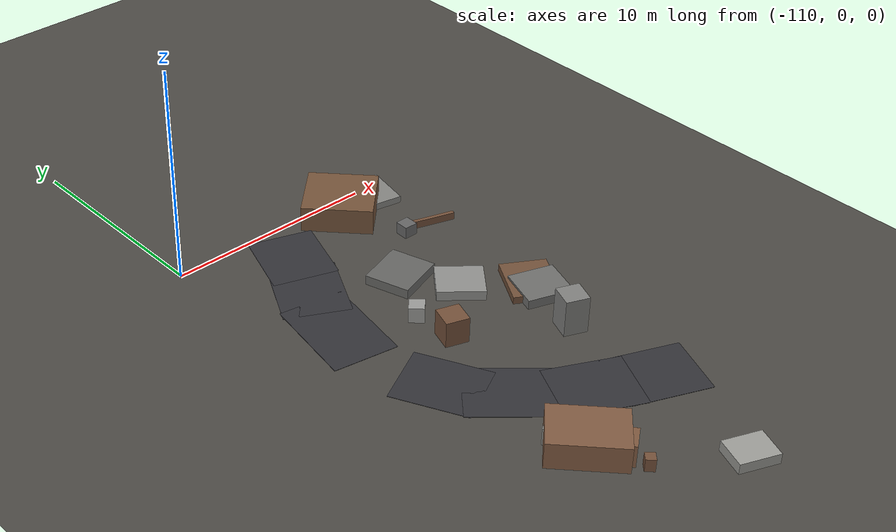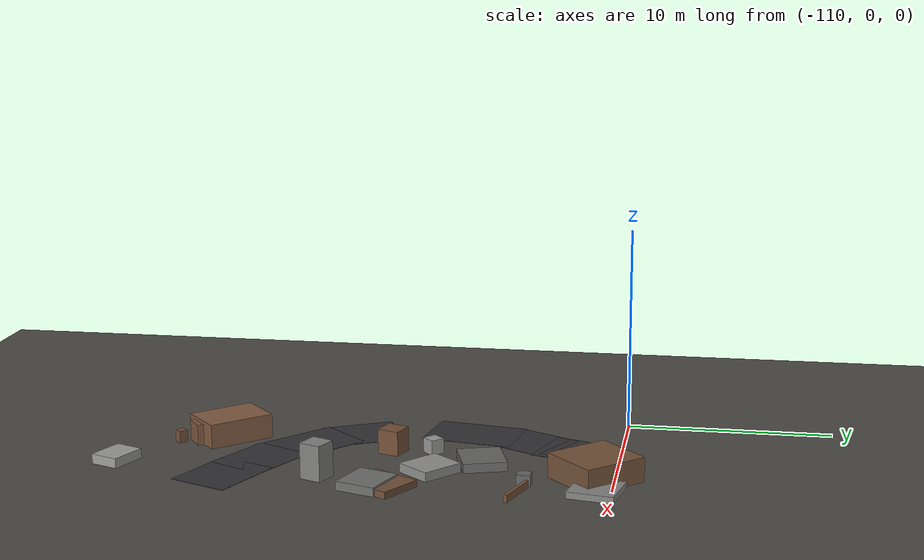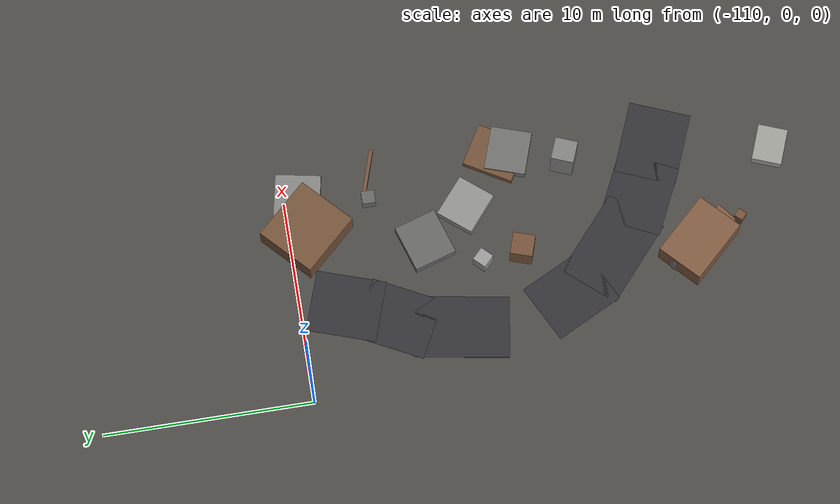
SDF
<sdf version="1.6">
 <world name="navitas_arena">
  <model name="ground_plane">
   <static>true</static>
   <link name="link">
    <collision name="collision">
     <geometry><plane><normal>0 0 1</normal><size>400 400</size></plane></geometry>
     <surface><friction><ode><mu>0.800</mu><mu2>0.800</mu2></ode></friction></surface>
    </collision>
    <visual name="visual">
     <cast_shadows>false</cast_shadows>
     <geometry><plane><normal>0 0 1</normal><size>400 400</size></plane></geometry>
     <material><ambient>0.300 0.290 0.270 1</ambient><diffuse>0.300 0.290 0.270 1</diffuse></material>
    </visual>
   </link>
  </model>
  <model name="road_kolay_1_4">
   <static>true</static>
   <pose>-99.745 -17.986 0.040 0 0 2.752</pose>
   <link name="link">
    <collision name="col"><geometry><box><size>3.623 3.000 0.020</size></box></geometry></collision>
    <visual name="vis">
     <geometry><box><size>3.623 3.000 0.020</size></box></geometry>
     <material><ambient>0.20 0.20 0.22 1</ambient><diffuse>0.20 0.20 0.22 1</diffuse></material>
    </visual>
   </link>
  </model>
  <model name="road_kolay_1_5">
   <static>true</static>
   <pose>-102.178 -16.896 0.040 0 0 2.688</pose>
   <link name="link">
    <collision name="col"><geometry><box><size>3.512 3.000 0.020</size></box></geometry></collision>
    <visual name="vis">
     <geometry><box><size>3.512 3.000 0.020</size></box></geometry>
     <material><ambient>0.20 0.20 0.22 1</ambient><diffuse>0.20 0.20 0.22 1</diffuse></material>
    </visual>
   </link>
  </model>
  <model name="road_kolay_1_6">
   <static>true</static>
   <pose>-104.698 -15.151 0.040 0 0 2.425</pose>
   <link name="link">
    <collision name="col"><geometry><box><size>4.472 3.000 0.020</size></box></geometry></collision>
    <visual name="vis">
     <geometry><box><size>4.472 3.000 0.020</size></box></geometry>
     <material><ambient>0.20 0.20 0.22 1</ambient><diffuse>0.20 0.20 0.22 1</diffuse></material>
    </visual>
   </link>
  </model>
  <model name="road_kolay_1_7">
   <static>true</static>
   <pose>-106.624 -12.817 0.040 0 0 2.034</pose>
   <link name="link">
    <collision name="col"><geometry><box><size>3.495 3.000 0.020</size></box></geometry></collision>
    <visual name="vis">
     <geometry><box><size>3.495 3.000 0.020</size></box></geometry>
     <material><ambient>0.20 0.20 0.22 1</ambient><diffuse>0.20 0.20 0.22 1</diffuse></material>
    </visual>
   </link>
  </model>
  <model name="road_kolay_1_9">
   <static>true</static>
   <pose>-107.424 -7.431 0.040 0 0 1.408</pose>
   <link name="link">
    <collision name="col"><geometry><box><size>4.476 3.000 0.020</size></box></geometry></collision>
    <visual name="vis">
     <geometry><box><size>4.476 3.000 0.020</size></box></geometry>
     <material><ambient>0.20 0.20 0.22 1</ambient><diffuse>0.20 0.20 0.22 1</diffuse></material>
    </visual>
   </link>
  </model>
  <model name="road_kolay_1_10">
   <static>true</static>
   <pose>-106.527 -4.500 0.040 0 0 1.091</pose>
   <link name="link">
    <collision name="col"><geometry><box><size>3.530 3.000 0.020</size></box></geometry></collision>
    <visual name="vis">
     <geometry><box><size>3.530 3.000 0.020</size></box></geometry>
     <material><ambient>0.20 0.20 0.22 1</ambient><diffuse>0.20 0.20 0.22 1</diffuse></material>
    </visual>
   </link>
  </model>
  <model name="road_kolay_1_11">
   <static>true</static>
   <pose>-105.526 -2.167 0.040 0 0 1.244</pose>
   <link name="link">
    <collision name="col"><geometry><box><size>3.363 3.000 0.020</size></box></geometry></collision>
    <visual name="vis">
     <geometry><box><size>3.363 3.000 0.020</size></box></geometry>
     <material><ambient>0.20 0.20 0.22 1</ambient><diffuse>0.20 0.20 0.22 1</diffuse></material>
    </visual>
   </link>
  </model>
  <model name="deb_kolay_4">
   <static>true</static>
   <pose>-99.810 -0.667 0.159 0 0 1.384</pose>
   <link name="link">
    <collision name="col"><geometry><box><size>2.197 2.189 0.318</size></box></geometry></collision>
    <visual name="vis">
     <geometry><box><size>2.197 2.189 0.318</size></box></geometry>
     <material><ambient>0.52 0.52 0.51 1</ambient><diffuse>0.52 0.52 0.51 1</diffuse></material>
    </visual>
   </link>
  </model>
  <model name="deb_kolay_10">
   <static>true</static>
   <pose>-99.119 -10.384 0.168 0 0 1.038</pose>
   <link name="link">
    <collision name="col"><geometry><box><size>2.487 2.132 0.336</size></box></geometry></collision>
    <visual name="vis">
     <geometry><box><size>2.487 2.132 0.336</size></box></geometry>
     <material><ambient>0.45 0.32 0.23 1</ambient><diffuse>0.45 0.32 0.23 1</diffuse></material>
    </visual>
   </link>
  </model>
  <model name="deb_kolay_20">
   <static>true</static>
   <pose>-100.008 -13.566 0.861 0 0 1.186</pose>
   <link name="link">
    <collision name="col"><geometry><box><size>1.084 1.084 1.721</size></box></geometry></collision>
    <visual name="vis">
     <geometry><box><size>1.084 1.084 1.721</size></box></geometry>
     <material><ambient>0.51 0.51 0.50 1</ambient><diffuse>0.51 0.51 0.50 1</diffuse></material>
    </visual>
   </link>
  </model>
  <model name="deb_kolay_22">
   <static>true</static>
   <pose>-101.520 -8.554 0.226 0 0 0.877</pose>
   <link name="link">
    <collision name="col"><geometry><box><size>1.874 2.137 0.452</size></box></geometry></collision>
    <visual name="vis">
     <geometry><box><size>1.874 2.137 0.452</size></box></geometry>
     <material><ambient>0.57 0.57 0.56 1</ambient><diffuse>0.57 0.57 0.56 1</diffuse></material>
    </visual>
   </link>
  </model>
  <model name="deb_kolay_26">
   <static>true</static>
   <pose>-100.451 -4.015 0.281 0 0 3.123</pose>
   <link name="link">
    <collision name="col"><geometry><box><size>0.638 0.638 0.561</size></box></geometry></collision>
    <visual name="vis">
     <geometry><box><size>0.638 0.638 0.561</size></box></geometry>
     <material><ambient>0.40 0.40 0.40 1</ambient><diffuse>0.40 0.40 0.40 1</diffuse></material>
    </visual>
   </link>
  </model>
  <model name="deb_kolay_42">
   <static>true</static>
   <pose>-101.394 -0.664 0.281 0 0 1.383</pose>
   <link name="link">
    <collision name="col"><geometry><box><size>0.439 0.439 0.562</size></box></geometry></collision>
    <visual name="vis">
     <geometry><box><size>0.439 0.439 0.562</size></box></geometry>
     <material><ambient>0.57 0.57 0.56 1</ambient><diffuse>0.57 0.57 0.56 1</diffuse></material>
    </visual>
   </link>
  </model>
  <model name="deb_kolay_56">
   <static>true</static>
   <pose>-102.980 -6.371 0.224 0 0 0.306</pose>
   <link name="link">
    <collision name="col"><geometry><box><size>2.315 2.089 0.447</size></box></geometry></collision>
    <visual name="vis">
     <geometry><box><size>2.315 2.089 0.447</size></box></geometry>
     <material><ambient>0.40 0.40 0.39 1</ambient><diffuse>0.40 0.40 0.39 1</diffuse></material>
    </visual>
   </link>
  </model>
  <model name="deb_kolay_76">
   <static>true</static>
   <pose>-99.124 -11.015 0.216 0 0 1.244</pose>
   <link name="link">
    <collision name="col"><geometry><box><size>1.978 2.156 0.432</size></box></geometry></collision>
    <visual name="vis">
     <geometry><box><size>1.978 2.156 0.432</size></box></geometry>
     <material><ambient>0.44 0.44 0.43 1</ambient><diffuse>0.44 0.44 0.43 1</diffuse></material>
    </visual>
   </link>
  </model>
  <model name="deb_kolay_104">
   <static>true</static>
   <pose>-104.158 -21.413 0.297 0 0 0.827</pose>
   <link name="link">
    <collision name="col"><geometry><box><size>0.429 0.429 0.593</size></box></geometry></collision>
    <visual name="vis">
     <geometry><box><size>0.429 0.429 0.593</size></box></geometry>
     <material><ambient>0.46 0.32 0.23 1</ambient><diffuse>0.46 0.32 0.23 1</diffuse></material>
    </visual>
   </link>
  </model>
  <model name="deb_kolay_130">
   <static>true</static>
   <pose>-105.832 -17.953 0.395 0 0 0.569</pose>
   <link name="link">
    <collision name="col"><geometry><box><size>0.593 0.593 0.790</size></box></geometry></collision>
    <visual name="vis">
     <geometry><box><size>0.593 0.593 0.790</size></box></geometry>
     <material><ambient>0.55 0.55 0.53 1</ambient><diffuse>0.55 0.55 0.53 1</diffuse></material>
    </visual>
   </link>
  </model>
  <model name="deb_kolay_157">
   <static>true</static>
   <pose>-104.383 -8.928 0.365 0 0 2.371</pose>
   <link name="link">
    <collision name="col"><geometry><box><size>0.691 0.691 0.731</size></box></geometry></collision>
    <visual name="vis">
     <geometry><box><size>0.691 0.691 0.731</size></box></geometry>
     <material><ambient>0.61 0.61 0.60 1</ambient><diffuse>0.61 0.61 0.60 1</diffuse></material>
    </visual>
   </link>
  </model>
  <model name="deb_kolay_197">
   <static>true</static>
   <pose>-104.411 -20.319 0.512 0 0 2.212</pose>
   <link name="link">
    <collision name="col"><geometry><box><size>1.084 1.084 1.024</size></box></geometry></collision>
    <visual name="vis">
     <geometry><box><size>1.084 1.084 1.024</size></box></geometry>
     <material><ambient>0.50 0.35 0.25 1</ambient><diffuse>0.50 0.35 0.25 1</diffuse></material>
    </visual>
   </link>
  </model>
  <model name="deb_kolay_200">
   <static>true</static>
   <pose>-99.079 -4.186 0.176 0 0 2.835</pose>
   <link name="link">
    <collision name="col"><geometry><box><size>2.214 0.178 0.351</size></box></geometry></collision>
    <visual name="vis">
     <geometry><box><size>2.214 0.178 0.351</size></box></geometry>
     <material><ambient>0.46 0.32 0.23 1</ambient><diffuse>0.46 0.32 0.23 1</diffuse></material>
    </visual>
   </link>
  </model>
  <model name="deb_kolay_204">
   <static>true</static>
   <pose>-100.848 -23.497 0.238 0 0 2.768</pose>
   <link name="link">
    <collision name="col"><geometry><box><size>1.804 1.433 0.476</size></box></geometry></collision>
    <visual name="vis">
     <geometry><box><size>1.804 1.433 0.476</size></box></geometry>
     <material><ambient>0.62 0.62 0.60 1</ambient><diffuse>0.62 0.62 0.60 1</diffuse></material>
    </visual>
   </link>
  </model>
  <model name="chic_kolay_2">
   <static>true</static>
   <pose>-105.177 -19.200 0.600 0 0 2.326</pose>
   <link name="link">
    <collision name="col"><geometry><box><size>3.280 2.328 1.200</size></box></geometry></collision>
    <visual name="vis">
     <geometry><box><size>3.280 2.328 1.200</size></box></geometry>
     <material><ambient>0.51 0.36 0.26 1</ambient><diffuse>0.51 0.36 0.26 1</diffuse></material>
    </visual>
   </link>
  </model>
  <model name="chic_kolay_3">
   <static>true</static>
   <pose>-104.188 -10.854 0.600 0 0 1.249</pose>
   <link name="link">
    <collision name="col"><geometry><box><size>1.067 1.067 1.200</size></box></geometry></collision>
    <visual name="vis">
     <geometry><box><size>1.067 1.067 1.200</size></box></geometry>
     <material><ambient>0.46 0.32 0.23 1</ambient><diffuse>0.46 0.32 0.23 1</diffuse></material>
    </visual>
   </link>
  </model>
  <model name="chic_kolay_5">
   <static>true</static>
   <pose>-101.657 -0.868 0.600 0 0 2.329</pose>
   <link name="link">
    <collision name="col"><geometry><box><size>3.238 3.027 1.200</size></box></geometry></collision>
    <visual name="vis">
     <geometry><box><size>3.238 3.027 1.200</size></box></geometry>
     <material><ambient>0.46 0.33 0.23 1</ambient><diffuse>0.46 0.33 0.23 1</diffuse></material>
    </visual>
   </link>
  </model>
 </world>
</sdf>
